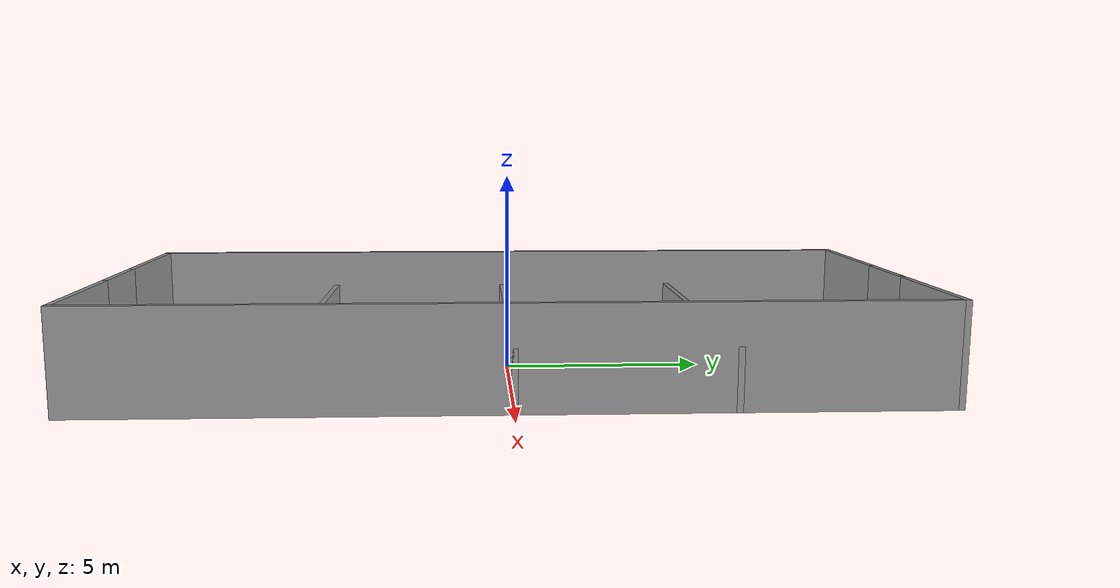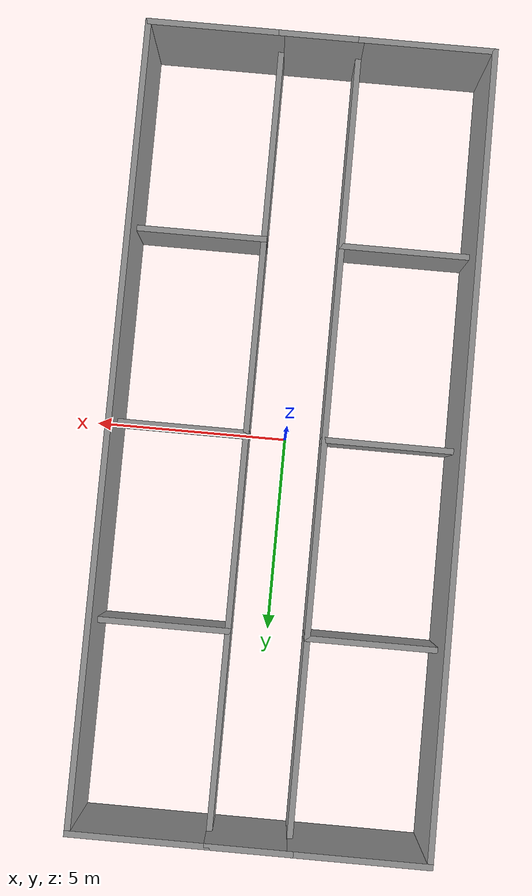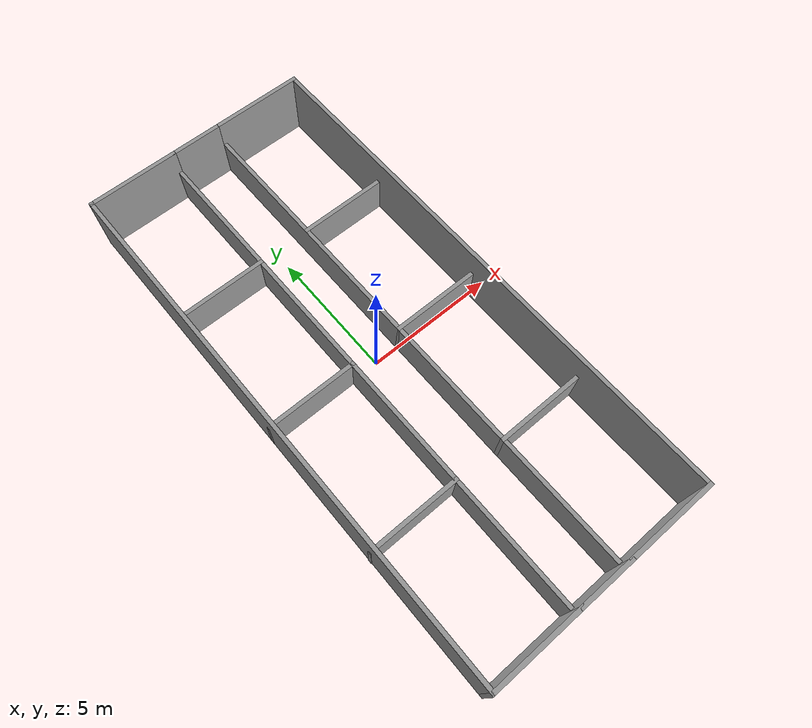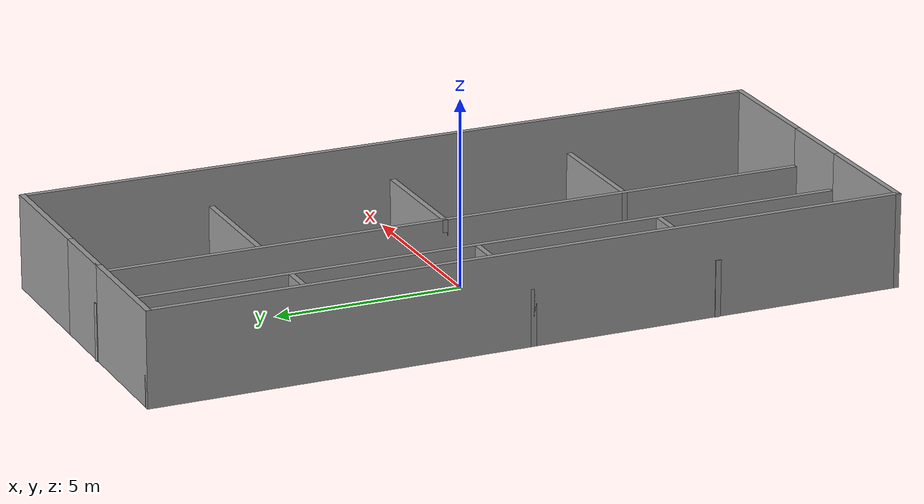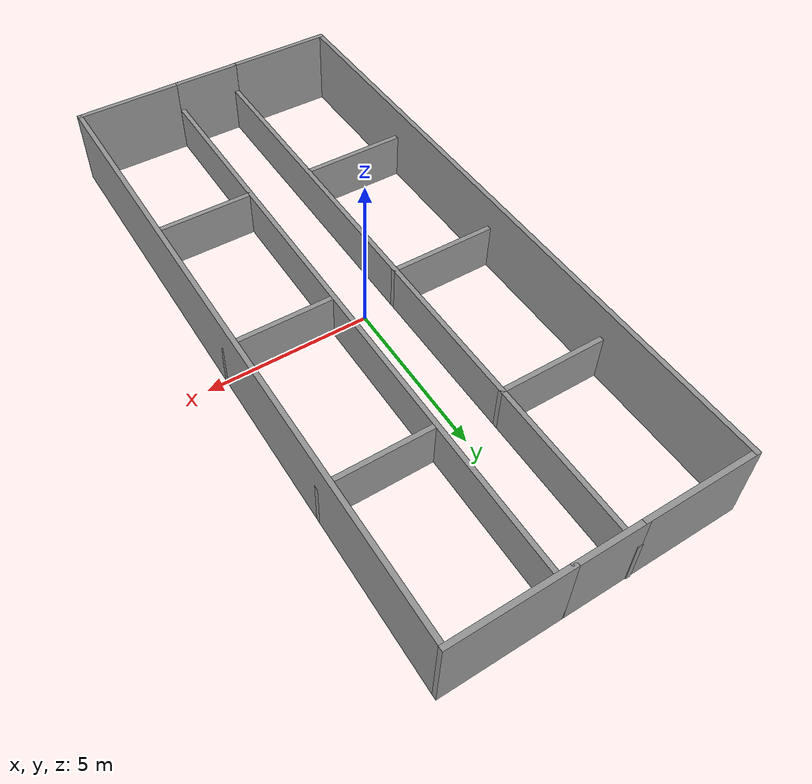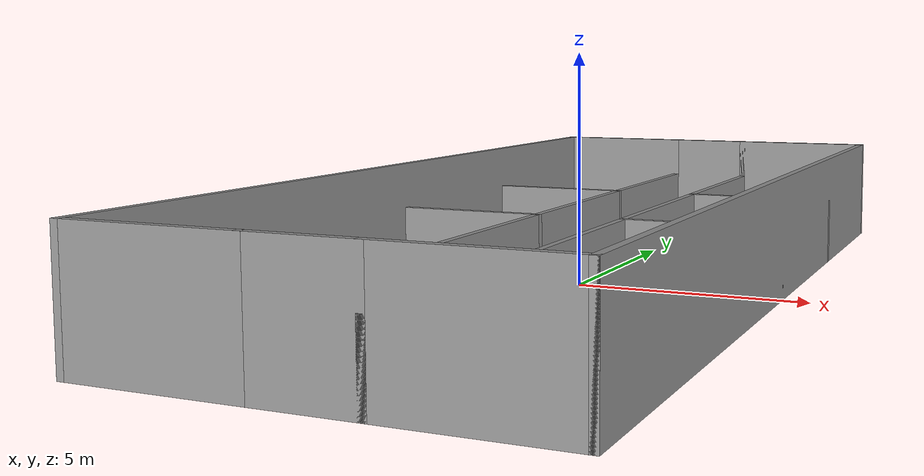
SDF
<?xml version='1.0'?>
<sdf version='1.7'>
  <model name='shed'>
    <pose>-0.009999 0.01 0 0 -0 0</pose>
    <link name='Wall_0'>
      <collision name='Wall_0_Collision'>
        <geometry>
          <box>
            <size>2.15 0.15 2.5</size>
          </box>
        </geometry>
        <pose>0 0 1.25 0 -0 0</pose>
      </collision>
      <visual name='Wall_0_Visual'>
        <pose>0 0 1.25 0 -0 0</pose>
        <geometry>
          <box>
            <size>2.15 0.15 2.5</size>
          </box>
        </geometry>
        <material>
          <script>
            <uri>file://media/materials/scripts/gazebo.material</uri>
            <name>Gazebo/Grey</name>
          </script>
          <ambient>1 1 1 1</ambient>
        </material>
        <meta>
          <layer>0</layer>
        </meta>
      </visual>
      <pose>0.009999 -10.01 0 0 -0 0</pose>
    </link>
    <link name='Wall_10'>
      <collision name='Wall_10_Collision'>
        <geometry>
          <box>
            <size>3.52 0.15 1.5</size>
          </box>
        </geometry>
        <pose>0 0 0.75 0 -0 0</pose>
      </collision>
      <visual name='Wall_10_Visual'>
        <pose>0 0 0.75 0 -0 0</pose>
        <geometry>
          <box>
            <size>3.52 0.15 1.5</size>
          </box>
        </geometry>
        <material>
          <script>
            <uri>file://media/materials/scripts/gazebo.material</uri>
            <name>Gazebo/Grey</name>
          </script>
          <ambient>1 1 1 1</ambient>
        </material>
        <meta>
          <layer>0</layer>
        </meta>
      </visual>
      <pose>-2.675 -5.01 0 0 -0 3.14159</pose>
    </link>
    <link name='Wall_13'>
      <collision name='Wall_13_Collision'>
        <geometry>
          <box>
            <size>3.5 0.15 1.5</size>
          </box>
        </geometry>
        <pose>0 0 0.75 0 -0 0</pose>
      </collision>
      <visual name='Wall_13_Visual'>
        <pose>0 0 0.75 0 -0 0</pose>
        <geometry>
          <box>
            <size>3.5 0.15 1.5</size>
          </box>
        </geometry>
        <material>
          <script>
            <uri>file://media/materials/scripts/gazebo.material</uri>
            <name>Gazebo/Grey</name>
          </script>
          <ambient>1 1 1 1</ambient>
        </material>
        <meta>
          <layer>0</layer>
        </meta>
      </visual>
      <pose>-2.665 -0.01 0 0 -0 3.14159</pose>
    </link>
    <link name='Wall_15'>
      <collision name='Wall_15_Collision'>
        <geometry>
          <box>
            <size>3.5 0.15 1.5</size>
          </box>
        </geometry>
        <pose>0 0 0.75 0 -0 0</pose>
      </collision>
      <visual name='Wall_15_Visual'>
        <pose>0 0 0.75 0 -0 0</pose>
        <geometry>
          <box>
            <size>3.5 0.15 1.5</size>
          </box>
        </geometry>
        <material>
          <script>
            <uri>file://media/materials/scripts/gazebo.material</uri>
            <name>Gazebo/Grey</name>
          </script>
          <ambient>1 1 1 1</ambient>
        </material>
        <meta>
          <layer>0</layer>
        </meta>
      </visual>
      <pose>-2.665 4.99 0 0 -0 3.14159</pose>
    </link>
    <link name='Wall_17'>
      <collision name='Wall_17_Collision'>
        <geometry>
          <box>
            <size>3.5 0.15 2.5</size>
          </box>
        </geometry>
        <pose>0 0 1.25 0 -0 0</pose>
      </collision>
      <visual name='Wall_17_Visual'>
        <pose>0 0 1.25 0 -0 0</pose>
        <geometry>
          <box>
            <size>3.5 0.15 2.5</size>
          </box>
        </geometry>
        <material>
          <script>
            <uri>file://media/materials/scripts/gazebo.material</uri>
            <name>Gazebo/Grey</name>
          </script>
          <ambient>1 1 1 1</ambient>
        </material>
        <meta>
          <layer>0</layer>
        </meta>
      </visual>
      <pose>-2.665 9.99 0 0 -0 3.14159</pose>
    </link>
    <link name='Wall_2'>
      <collision name='Wall_2_Collision'>
        <geometry>
          <box>
            <size>20.17 0.15 1.5</size>
          </box>
        </geometry>
        <pose>0 0 0.75 0 -0 0</pose>
      </collision>
      <visual name='Wall_2_Visual'>
        <pose>0 0 0.75 0 -0 0</pose>
        <geometry>
          <box>
            <size>20.17 0.15 1.5</size>
          </box>
        </geometry>
        <material>
          <script>
            <uri>file://media/materials/scripts/gazebo.material</uri>
            <name>Gazebo/Grey</name>
          </script>
          <ambient>1 1 1 1</ambient>
        </material>
        <meta>
          <layer>0</layer>
        </meta>
      </visual>
      <pose>-0.990001 -0 0 0 -0 1.5708</pose>
    </link>
    <link name='Wall_20'>
      <collision name='Wall_20_Collision'>
        <geometry>
          <box>
            <size>20.15 0.15 1.5</size>
          </box>
        </geometry>
        <pose>0 0 0.75 0 -0 0</pose>
      </collision>
      <visual name='Wall_20_Visual'>
        <pose>0 0 0.75 0 -0 0</pose>
        <geometry>
          <box>
            <size>20.15 0.15 1.5</size>
          </box>
        </geometry>
        <material>
          <script>
            <uri>file://media/materials/scripts/gazebo.material</uri>
            <name>Gazebo/Grey</name>
          </script>
          <ambient>1 1 1 1</ambient>
        </material>
        <meta>
          <layer>0</layer>
        </meta>
      </visual>
      <pose>1.01 -0.01 0 0 -0 1.5708</pose>
    </link>
    <link name='Wall_22'>
      <collision name='Wall_22_Collision'>
        <geometry>
          <box>
            <size>3.5 0.15 2.5</size>
          </box>
        </geometry>
        <pose>0 0 1.25 0 -0 0</pose>
      </collision>
      <visual name='Wall_22_Visual'>
        <pose>0 0 1.25 0 -0 0</pose>
        <geometry>
          <box>
            <size>3.5 0.15 2.5</size>
          </box>
        </geometry>
        <material>
          <script>
            <uri>file://media/materials/scripts/gazebo.material</uri>
            <name>Gazebo/Grey</name>
          </script>
          <ambient>1 1 1 1</ambient>
        </material>
        <meta>
          <layer>0</layer>
        </meta>
      </visual>
      <pose>2.685 -10.01 0 0 -0 0</pose>
    </link>
    <link name='Wall_24'>
      <collision name='Wall_24_Collision'>
        <geometry>
          <box>
            <size>20 0.15 2.5</size>
          </box>
        </geometry>
        <pose>0 0 1.25 0 -0 0</pose>
      </collision>
      <visual name='Wall_24_Visual'>
        <pose>0 0 1.25 0 -0 0</pose>
        <geometry>
          <box>
            <size>20 0.15 2.5</size>
          </box>
        </geometry>
        <material>
          <script>
            <uri>file://media/materials/scripts/gazebo.material</uri>
            <name>Gazebo/Grey</name>
          </script>
          <ambient>1 1 1 1</ambient>
        </material>
        <meta>
          <layer>0</layer>
        </meta>
      </visual>
      <pose>4.36 -0.085 0 0 -0 1.5708</pose>
    </link>
    <link name='Wall_26'>
      <collision name='Wall_26_Collision'>
        <geometry>
          <box>
            <size>3.5 0.15 1.5</size>
          </box>
        </geometry>
        <pose>0 0 0.75 0 -0 0</pose>
      </collision>
      <visual name='Wall_26_Visual'>
        <pose>0 0 0.75 0 -0 0</pose>
        <geometry>
          <box>
            <size>3.5 0.15 1.5</size>
          </box>
        </geometry>
        <material>
          <script>
            <uri>file://media/materials/scripts/gazebo.material</uri>
            <name>Gazebo/Grey</name>
          </script>
          <ambient>1 1 1 1</ambient>
        </material>
        <meta>
          <layer>0</layer>
        </meta>
      </visual>
      <pose>2.685 -5.01 0 0 -0 0</pose>
    </link>
    <link name='Wall_28'>
      <collision name='Wall_28_Collision'>
        <geometry>
          <box>
            <size>3.5 0.15 1.5</size>
          </box>
        </geometry>
        <pose>0 0 0.75 0 -0 0</pose>
      </collision>
      <visual name='Wall_28_Visual'>
        <pose>0 0 0.75 0 -0 0</pose>
        <geometry>
          <box>
            <size>3.5 0.15 1.5</size>
          </box>
        </geometry>
        <material>
          <script>
            <uri>file://media/materials/scripts/gazebo.material</uri>
            <name>Gazebo/Grey</name>
          </script>
          <ambient>1 1 1 1</ambient>
        </material>
        <meta>
          <layer>0</layer>
        </meta>
      </visual>
      <pose>2.685 -0.01 0 0 -0 0</pose>
    </link>
    <link name='Wall_30'>
      <collision name='Wall_30_Collision'>
        <geometry>
          <box>
            <size>3.5 0.15 1.5</size>
          </box>
        </geometry>
        <pose>0 0 0.75 0 -0 0</pose>
      </collision>
      <visual name='Wall_30_Visual'>
        <pose>0 0 0.75 0 -0 0</pose>
        <geometry>
          <box>
            <size>3.5 0.15 1.5</size>
          </box>
        </geometry>
        <material>
          <script>
            <uri>file://media/materials/scripts/gazebo.material</uri>
            <name>Gazebo/Grey</name>
          </script>
          <ambient>1 1 1 1</ambient>
        </material>
        <meta>
          <layer>0</layer>
        </meta>
      </visual>
      <pose>2.685 4.99 0 0 -0 0</pose>
    </link>
    <link name='Wall_32'>
      <collision name='Wall_32_Collision'>
        <geometry>
          <box>
            <size>3.5 0.15 2.5</size>
          </box>
        </geometry>
        <pose>0 0 1.25 0 -0 0</pose>
      </collision>
      <visual name='Wall_32_Visual'>
        <pose>0 0 1.25 0 -0 0</pose>
        <geometry>
          <box>
            <size>3.5 0.15 2.5</size>
          </box>
        </geometry>
        <material>
          <script>
            <uri>file://media/materials/scripts/gazebo.material</uri>
            <name>Gazebo/Grey</name>
          </script>
          <ambient>1 1 1 1</ambient>
        </material>
        <meta>
          <layer>0</layer>
        </meta>
      </visual>
      <pose>2.685 9.99 0 0 -0 0</pose>
    </link>
    <link name='Wall_36'>
      <collision name='Wall_36_Collision'>
        <geometry>
          <box>
            <size>2.15 0.15 2.5</size>
          </box>
        </geometry>
        <pose>0 0 1.25 0 -0 0</pose>
      </collision>
      <visual name='Wall_36_Visual'>
        <pose>0 0 1.25 0 -0 0</pose>
        <geometry>
          <box>
            <size>2.15 0.15 2.5</size>
          </box>
        </geometry>
        <material>
          <script>
            <uri>file://media/materials/scripts/gazebo.material</uri>
            <name>Gazebo/Grey</name>
          </script>
          <ambient>1 1 1 1</ambient>
        </material>
        <meta>
          <layer>0</layer>
        </meta>
      </visual>
      <pose>0.009999 9.99 0 0 -0 0</pose>
    </link>
    <link name='Wall_4'>
      <collision name='Wall_4_Collision'>
        <geometry>
          <box>
            <size>3.5 0.15 2.5</size>
          </box>
        </geometry>
        <pose>0 0 1.25 0 -0 0</pose>
      </collision>
      <visual name='Wall_4_Visual'>
        <pose>0 0 1.25 0 -0 0</pose>
        <geometry>
          <box>
            <size>3.5 0.15 2.5</size>
          </box>
        </geometry>
        <material>
          <script>
            <uri>file://media/materials/scripts/gazebo.material</uri>
            <name>Gazebo/Grey</name>
          </script>
          <ambient>1 1 1 1</ambient>
        </material>
        <meta>
          <layer>0</layer>
        </meta>
      </visual>
      <pose>-2.665 -10.01 0 0 -0 3.14159</pose>
    </link>
    <link name='Wall_6'>
      <collision name='Wall_6_Collision'>
        <geometry>
          <box>
            <size>20.15 0.15 2.5</size>
          </box>
        </geometry>
        <pose>0 0 1.25 0 -0 0</pose>
      </collision>
      <visual name='Wall_6_Visual'>
        <pose>0 0 1.25 0 -0 0</pose>
        <geometry>
          <box>
            <size>20.15 0.15 2.5</size>
          </box>
        </geometry>
        <material>
          <script>
            <uri>file://media/materials/scripts/gazebo.material</uri>
            <name>Gazebo/Grey</name>
          </script>
          <ambient>1 1 1 1</ambient>
        </material>
        <meta>
          <layer>0</layer>
        </meta>
      </visual>
      <pose>-4.34 -0.01 0 0 -0 1.5708</pose>
    </link>
    <static>1</static>
  </model>
</sdf>
